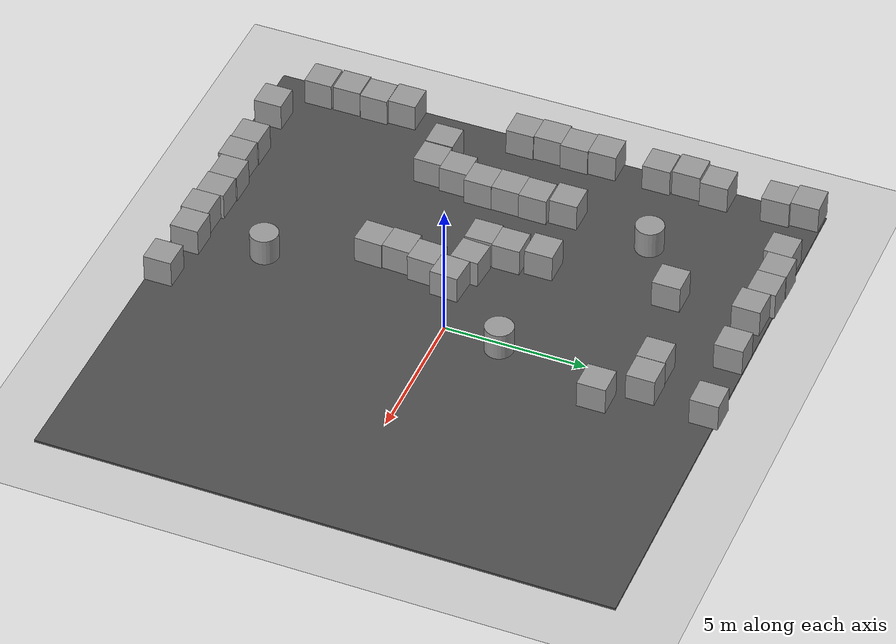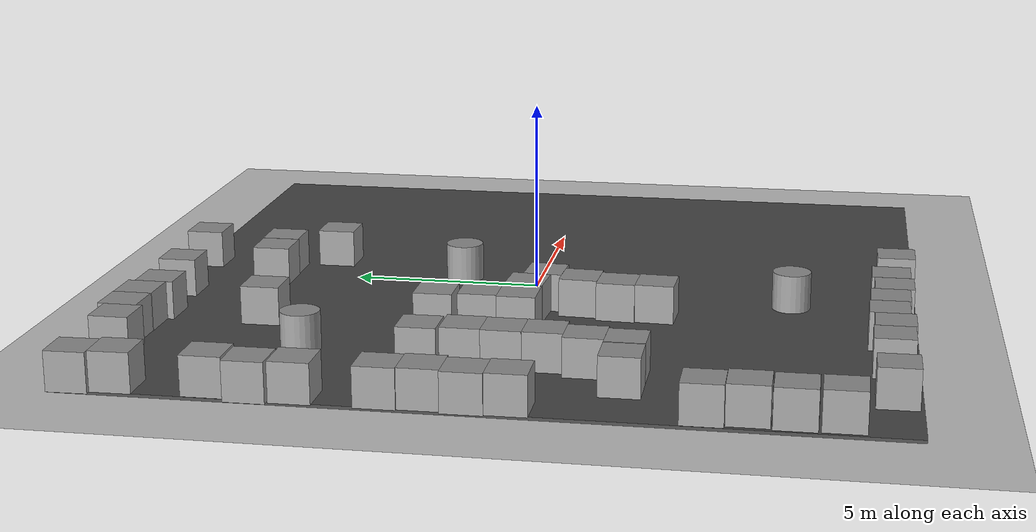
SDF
<sdf version="1.6">
 <world name="default">
  <model name="ground_plane">
   <static>1</static>
   <link name="link">
    <collision name="collision">
     <geometry><plane><normal>0 0 1</normal><size>100 100</size></plane></geometry>
     <surface><friction><ode><mu>100</mu><mu2>50</mu2></ode></friction></surface>
    </collision>
    <visual name="visual">
     <cast_shadows>0</cast_shadows>
     <geometry><plane><normal>0 0 1</normal><size>100 100</size></plane></geometry>
     <material>
      <script><uri>file://media/materials/scripts/gazebo.material</uri><name>Gazebo/Grey</name></script>
     </material>
    </visual>
   </link>
  </model>
  <model name="asphalt_plane">
   <static>1</static>
   <link name="link">
    <collision name="collision"><geometry><box><size>20 20 0.1</size></box></geometry></collision>
    <visual name="visual">
     <cast_shadows>0</cast_shadows>
     <geometry><box><size>20 20 0.1</size></box></geometry>
     <material>
      <script>
       <uri>model://asphalt_plane/materials/scripts</uri>
       <uri>model://asphalt_plane/materials/textures</uri>
       <name>vrc/asphalt</name>
      </script>
     </material>
    </visual>
   </link>
   <pose>0.023839 -0.146036 0 0 -0 0</pose>
  </model>
  <model name="unit_box_0">
   <pose>-9.39334 -8.37793 0.549996 9e-06 0 2.1e-05</pose>
   <link name="link">
    <inertial>
     <mass>1</mass>
     <inertia>
      <ixx>0.166667</ixx>
      <ixy>0</ixy>
      <ixz>0</ixz>
      <iyy>0.166667</iyy>
      <iyz>0</iyz>
      <izz>0.166667</izz>
     </inertia>
    </inertial>
    <collision name="collision"><geometry><box><size>1 1 1</size></box></geometry></collision>
    <visual name="visual">
     <geometry><box><size>1 1 1</size></box></geometry>
     <material>
      <script><name>Gazebo/Grey</name><uri>file://media/materials/scripts/gazebo.material</uri></script>
     </material>
    </visual>
   </link>
  </model>
  <model name="unit_box_1">
   <pose>-9.41764 -7.31554 0.549996 9e-06 0 2.1e-05</pose>
   <link name="link">
    <inertial>
     <mass>1</mass>
     <inertia>
      <ixx>0.166667</ixx>
      <ixy>0</ixy>
      <ixz>0</ixz>
      <iyy>0.166667</iyy>
      <iyz>0</iyz>
      <izz>0.166667</izz>
     </inertia>
    </inertial>
    <collision name="collision"><geometry><box><size>1 1 1</size></box></geometry></collision>
    <visual name="visual">
     <geometry><box><size>1 1 1</size></box></geometry>
     <material>
      <script><name>Gazebo/Grey</name><uri>file://media/materials/scripts/gazebo.material</uri></script>
     </material>
    </visual>
   </link>
  </model>
  <model name="unit_box_1_clone">
   <pose>-9.36199 -6.27955 0.549996 9e-06 -0 7.6e-05</pose>
   <link name="link">
    <inertial>
     <mass>1</mass>
     <inertia>
      <ixx>0.166667</ixx>
      <ixy>0</ixy>
      <ixz>0</ixz>
      <iyy>0.166667</iyy>
      <iyz>0</iyz>
      <izz>0.166667</izz>
     </inertia>
    </inertial>
    <collision name="collision"><geometry><box><size>1 1 1</size></box></geometry></collision>
    <visual name="visual">
     <geometry><box><size>1 1 1</size></box></geometry>
     <material>
      <script><name>Gazebo/Grey</name><uri>file://media/materials/scripts/gazebo.material</uri></script>
     </material>
    </visual>
   </link>
  </model>
  <model name="unit_box_1_clone_0">
   <pose>-9.46654 -5.27001 0.549996 9e-06 0 7.5e-05</pose>
   <link name="link">
    <inertial>
     <mass>1</mass>
     <inertia>
      <ixx>0.166667</ixx>
      <ixy>0</ixy>
      <ixz>0</ixz>
      <iyy>0.166667</iyy>
      <iyz>0</iyz>
      <izz>0.166667</izz>
     </inertia>
    </inertial>
    <collision name="collision"><geometry><box><size>1 1 1</size></box></geometry></collision>
    <visual name="visual">
     <geometry><box><size>1 1 1</size></box></geometry>
     <material>
      <script><name>Gazebo/Grey</name><uri>file://media/materials/scripts/gazebo.material</uri></script>
     </material>
    </visual>
   </link>
  </model>
  <model name="unit_box_1_clone_1">
   <pose>-7.99794 -3.28029 0.549996 9e-06 -0 7.4e-05</pose>
   <link name="link">
    <inertial>
     <mass>1</mass>
     <inertia>
      <ixx>0.166667</ixx>
      <ixy>0</ixy>
      <ixz>0</ixz>
      <iyy>0.166667</iyy>
      <iyz>0</iyz>
      <izz>0.166667</izz>
     </inertia>
    </inertial>
    <collision name="collision"><geometry><box><size>1 1 1</size></box></geometry></collision>
    <visual name="visual">
     <geometry><box><size>1 1 1</size></box></geometry>
     <material>
      <script><name>Gazebo/Grey</name><uri>file://media/materials/scripts/gazebo.material</uri></script>
     </material>
    </visual>
   </link>
  </model>
  <model name="unit_box_1_clone_2">
   <pose>-6.96348 -3.28332 0.549996 9e-06 0 -0.008605</pose>
   <link name="link">
    <inertial>
     <mass>1</mass>
     <inertia>
      <ixx>0.166667</ixx>
      <ixy>0</ixy>
      <ixz>0</ixz>
      <iyy>0.166667</iyy>
      <iyz>0</iyz>
      <izz>0.166667</izz>
     </inertia>
    </inertial>
    <collision name="collision"><geometry><box><size>1 1 1</size></box></geometry></collision>
    <visual name="visual">
     <geometry><box><size>1 1 1</size></box></geometry>
     <material>
      <script><name>Gazebo/Grey</name><uri>file://media/materials/scripts/gazebo.material</uri></script>
     </material>
    </visual>
   </link>
  </model>
  <model name="unit_box_1_clone_3">
   <pose>-6.82914 -2.28436 0.549996 9e-06 0 -0.008661</pose>
   <link name="link">
    <inertial>
     <mass>1</mass>
     <inertia>
      <ixx>0.166667</ixx>
      <ixy>0</ixy>
      <ixz>0</ixz>
      <iyy>0.166667</iyy>
      <iyz>0</iyz>
      <izz>0.166667</izz>
     </inertia>
    </inertial>
    <collision name="collision"><geometry><box><size>1 1 1</size></box></geometry></collision>
    <visual name="visual">
     <geometry><box><size>1 1 1</size></box></geometry>
     <material>
      <script><name>Gazebo/Grey</name><uri>file://media/materials/scripts/gazebo.material</uri></script>
     </material>
    </visual>
   </link>
  </model>
  <model name="unit_box_1_clone_4">
   <pose>-6.57612 -1.28593 0.549996 9e-06 0 -0.007904</pose>
   <link name="link">
    <inertial>
     <mass>1</mass>
     <inertia>
      <ixx>0.166667</ixx>
      <ixy>0</ixy>
      <ixz>0</ixz>
      <iyy>0.166667</iyy>
      <iyz>0</iyz>
      <izz>0.166667</izz>
     </inertia>
    </inertial>
    <collision name="collision"><geometry><box><size>1 1 1</size></box></geometry></collision>
    <visual name="visual">
     <geometry><box><size>1 1 1</size></box></geometry>
     <material>
      <script><name>Gazebo/Grey</name><uri>file://media/materials/scripts/gazebo.material</uri></script>
     </material>
    </visual>
   </link>
  </model>
  <model name="unit_box_1_clone_5">
   <pose>-6.58122 -0.285844 0.549996 9e-06 0 -0.007904</pose>
   <link name="link">
    <inertial>
     <mass>1</mass>
     <inertia>
      <ixx>0.166667</ixx>
      <ixy>0</ixy>
      <ixz>0</ixz>
      <iyy>0.166667</iyy>
      <iyz>0</iyz>
      <izz>0.166667</izz>
     </inertia>
    </inertial>
    <collision name="collision"><geometry><box><size>1 1 1</size></box></geometry></collision>
    <visual name="visual">
     <geometry><box><size>1 1 1</size></box></geometry>
     <material>
      <script><name>Gazebo/Grey</name><uri>file://media/materials/scripts/gazebo.material</uri></script>
     </material>
    </visual>
   </link>
  </model>
  <model name="unit_box_1_clone_6">
   <pose>-6.55061 0.714163 0.549996 9e-06 -0 -0.008004</pose>
   <link name="link">
    <inertial>
     <mass>1</mass>
     <inertia>
      <ixx>0.166667</ixx>
      <ixy>0</ixy>
      <ixz>0</ixz>
      <iyy>0.166667</iyy>
      <iyz>0</iyz>
      <izz>0.166667</izz>
     </inertia>
    </inertial>
    <collision name="collision"><geometry><box><size>1 1 1</size></box></geometry></collision>
    <visual name="visual">
     <geometry><box><size>1 1 1</size></box></geometry>
     <material>
      <script><name>Gazebo/Grey</name><uri>file://media/materials/scripts/gazebo.material</uri></script>
     </material>
    </visual>
   </link>
  </model>
  <model name="unit_box_2">
   <pose>-6.68236 1.7653 0.549995 -1e-05 -0 2.1e-05</pose>
   <link name="link">
    <inertial>
     <mass>1</mass>
     <inertia>
      <ixx>0.166667</ixx>
      <ixy>0</ixy>
      <ixz>0</ixz>
      <iyy>0.166667</iyy>
      <iyz>0</iyz>
      <izz>0.166667</izz>
     </inertia>
    </inertial>
    <collision name="collision"><geometry><box><size>1 1 1</size></box></geometry></collision>
    <visual name="visual">
     <geometry><box><size>1 1 1</size></box></geometry>
     <material>
      <script><name>Gazebo/Grey</name><uri>file://media/materials/scripts/gazebo.material</uri></script>
     </material>
    </visual>
   </link>
  </model>
  <model name="unit_box_1_clone_7">
   <pose>-0.705026 -9.49284 0.549998 -1e-06 4e-06 -0.003058</pose>
   <link name="link">
    <inertial>
     <mass>1</mass>
     <inertia>
      <ixx>0.166667</ixx>
      <ixy>0</ixy>
      <ixz>0</ixz>
      <iyy>0.166667</iyy>
      <iyz>0</iyz>
      <izz>0.166667</izz>
     </inertia>
    </inertial>
    <collision name="collision"><geometry><box><size>1 1 1</size></box></geometry></collision>
    <visual name="visual">
     <geometry><box><size>1 1 1</size></box></geometry>
     <material>
      <script><name>Gazebo/Grey</name><uri>file://media/materials/scripts/gazebo.material</uri></script>
     </material>
    </visual>
   </link>
  </model>
  <model name="unit_box_1_clone_8">
   <pose>-1.70732 -9.56118 0.549998 -1e-06 4e-06 0.000224</pose>
   <link name="link">
    <inertial>
     <mass>1</mass>
     <inertia>
      <ixx>0.166667</ixx>
      <ixy>0</ixy>
      <ixz>0</ixz>
      <iyy>0.166667</iyy>
      <iyz>0</iyz>
      <izz>0.166667</izz>
     </inertia>
    </inertial>
    <collision name="collision"><geometry><box><size>1 1 1</size></box></geometry></collision>
    <visual name="visual">
     <geometry><box><size>1 1 1</size></box></geometry>
     <material>
      <script><name>Gazebo/Grey</name><uri>file://media/materials/scripts/gazebo.material</uri></script>
     </material>
    </visual>
   </link>
  </model>
  <model name="unit_box_1_clone_9">
   <pose>-2.70758 -9.44657 0.549995 -1e-05 -0 0.000276</pose>
   <link name="link">
    <inertial>
     <mass>1</mass>
     <inertia>
      <ixx>0.166667</ixx>
      <ixy>0</ixy>
      <ixz>0</ixz>
      <iyy>0.166667</iyy>
      <iyz>0</iyz>
      <izz>0.166667</izz>
     </inertia>
    </inertial>
    <collision name="collision"><geometry><box><size>1 1 1</size></box></geometry></collision>
    <visual name="visual">
     <geometry><box><size>1 1 1</size></box></geometry>
     <material>
      <script><name>Gazebo/Grey</name><uri>file://media/materials/scripts/gazebo.material</uri></script>
     </material>
    </visual>
   </link>
  </model>
  <model name="unit_box_1_clone_10">
   <pose>-3.70789 -9.40962 0.549996 9e-06 -0 0.000216</pose>
   <link name="link">
    <inertial>
     <mass>1</mass>
     <inertia>
      <ixx>0.166667</ixx>
      <ixy>0</ixy>
      <ixz>0</ixz>
      <iyy>0.166667</iyy>
      <iyz>0</iyz>
      <izz>0.166667</izz>
     </inertia>
    </inertial>
    <collision name="collision"><geometry><box><size>1 1 1</size></box></geometry></collision>
    <visual name="visual">
     <geometry><box><size>1 1 1</size></box></geometry>
     <material>
      <script><name>Gazebo/Grey</name><uri>file://media/materials/scripts/gazebo.material</uri></script>
     </material>
    </visual>
   </link>
  </model>
  <model name="unit_box_1_clone_11">
   <pose>-4.7079 -9.53282 0.549996 9e-06 -0 0.000276</pose>
   <link name="link">
    <inertial>
     <mass>1</mass>
     <inertia>
      <ixx>0.166667</ixx>
      <ixy>0</ixy>
      <ixz>0</ixz>
      <iyy>0.166667</iyy>
      <iyz>0</iyz>
      <izz>0.166667</izz>
     </inertia>
    </inertial>
    <collision name="collision"><geometry><box><size>1 1 1</size></box></geometry></collision>
    <visual name="visual">
     <geometry><box><size>1 1 1</size></box></geometry>
     <material>
      <script><name>Gazebo/Grey</name><uri>file://media/materials/scripts/gazebo.material</uri></script>
     </material>
    </visual>
   </link>
  </model>
  <model name="unit_box_1_clone_12">
   <pose>-5.70792 -9.49714 0.549996 9e-06 -0 0.000294</pose>
   <link name="link">
    <inertial>
     <mass>1</mass>
     <inertia>
      <ixx>0.166667</ixx>
      <ixy>0</ixy>
      <ixz>0</ixz>
      <iyy>0.166667</iyy>
      <iyz>0</iyz>
      <izz>0.166667</izz>
     </inertia>
    </inertial>
    <collision name="collision"><geometry><box><size>1 1 1</size></box></geometry></collision>
    <visual name="visual">
     <geometry><box><size>1 1 1</size></box></geometry>
     <material>
      <script><name>Gazebo/Grey</name><uri>file://media/materials/scripts/gazebo.material</uri></script>
     </material>
    </visual>
   </link>
  </model>
  <model name="unit_box_1_clone_13">
   <pose>-7.74684 -9.54883 0.549996 9e-06 -0 6.6e-05</pose>
   <link name="link">
    <inertial>
     <mass>1</mass>
     <inertia>
      <ixx>0.166667</ixx>
      <ixy>0</ixy>
      <ixz>0</ixz>
      <iyy>0.166667</iyy>
      <iyz>0</iyz>
      <izz>0.166667</izz>
     </inertia>
    </inertial>
    <collision name="collision"><geometry><box><size>1 1 1</size></box></geometry></collision>
    <visual name="visual">
     <geometry><box><size>1 1 1</size></box></geometry>
     <material>
      <script><name>Gazebo/Grey</name><uri>file://media/materials/scripts/gazebo.material</uri></script>
     </material>
    </visual>
   </link>
  </model>
  <model name="unit_box_1_clone_14">
   <pose>1.09207 -9.6549 0.55 0 -0 0.001285</pose>
   <link name="link">
    <inertial>
     <mass>1</mass>
     <inertia>
      <ixx>0.166667</ixx>
      <ixy>0</ixy>
      <ixz>0</ixz>
      <iyy>0.166667</iyy>
      <iyz>0</iyz>
      <izz>0.166667</izz>
     </inertia>
    </inertial>
    <collision name="collision"><geometry><box><size>1 1 1</size></box></geometry></collision>
    <visual name="visual">
     <geometry><box><size>1 1 1</size></box></geometry>
     <material>
      <script><name>Gazebo/Grey</name><uri>file://media/materials/scripts/gazebo.material</uri></script>
     </material>
    </visual>
   </link>
  </model>
  <model name="unit_box_1_clone_39">
   <pose>0.745098 9.52547 0.549998 -3e-06 -6e-06 -0.000691</pose>
   <link name="link">
    <inertial>
     <mass>1</mass>
     <inertia>
      <ixx>0.166667</ixx>
      <ixy>0</ixy>
      <ixz>0</ixz>
      <iyy>0.166667</iyy>
      <iyz>0</iyz>
      <izz>0.166667</izz>
     </inertia>
    </inertial>
    <collision name="collision"><geometry><box><size>1 1 1</size></box></geometry></collision>
    <visual name="visual">
     <geometry><box><size>1 1 1</size></box></geometry>
     <material>
      <script><name>Gazebo/Grey</name><uri>file://media/materials/scripts/gazebo.material</uri></script>
     </material>
    </visual>
   </link>
  </model>
  <model name="unit_box_1_clone_40">
   <pose>-2.0363 9.35144 0.549996 9e-06 -0 6.2e-05</pose>
   <link name="link">
    <inertial>
     <mass>1</mass>
     <inertia>
      <ixx>0.166667</ixx>
      <ixy>0</ixy>
      <ixz>0</ixz>
      <iyy>0.166667</iyy>
      <iyz>0</iyz>
      <izz>0.166667</izz>
     </inertia>
    </inertial>
    <collision name="collision"><geometry><box><size>1 1 1</size></box></geometry></collision>
    <visual name="visual">
     <geometry><box><size>1 1 1</size></box></geometry>
     <material>
      <script><name>Gazebo/Grey</name><uri>file://media/materials/scripts/gazebo.material</uri></script>
     </material>
    </visual>
   </link>
  </model>
  <model name="unit_box_1_clone_41">
   <pose>-4.02686 9.2434 0.549995 -0 1e-05 -0.009787</pose>
   <link name="link">
    <inertial>
     <mass>1</mass>
     <inertia>
      <ixx>0.166667</ixx>
      <ixy>0</ixy>
      <ixz>0</ixz>
      <iyy>0.166667</iyy>
      <iyz>0</iyz>
      <izz>0.166667</izz>
     </inertia>
    </inertial>
    <collision name="collision"><geometry><box><size>1 1 1</size></box></geometry></collision>
    <visual name="visual">
     <geometry><box><size>1 1 1</size></box></geometry>
     <material>
      <script><name>Gazebo/Grey</name><uri>file://media/materials/scripts/gazebo.material</uri></script>
     </material>
    </visual>
   </link>
  </model>
  <model name="unit_box_1_clone_42">
   <pose>-5.02535 9.42291 0.55 0 0 -0.00982</pose>
   <link name="link">
    <inertial>
     <mass>1</mass>
     <inertia>
      <ixx>0.166667</ixx>
      <ixy>0</ixy>
      <ixz>0</ixz>
      <iyy>0.166667</iyy>
      <iyz>0</iyz>
      <izz>0.166667</izz>
     </inertia>
    </inertial>
    <collision name="collision"><geometry><box><size>1 1 1</size></box></geometry></collision>
    <visual name="visual">
     <geometry><box><size>1 1 1</size></box></geometry>
     <material>
      <script><name>Gazebo/Grey</name><uri>file://media/materials/scripts/gazebo.material</uri></script>
     </material>
    </visual>
   </link>
  </model>
  <model name="unit_box_1_clone_43">
   <pose>-6.02527 9.44736 0.549996 -8e-06 -0 -0.009945</pose>
   <link name="link">
    <inertial>
     <mass>1</mass>
     <inertia>
      <ixx>0.166667</ixx>
      <ixy>0</ixy>
      <ixz>0</ixz>
      <iyy>0.166667</iyy>
      <iyz>0</iyz>
      <izz>0.166667</izz>
     </inertia>
    </inertial>
    <collision name="collision"><geometry><box><size>1 1 1</size></box></geometry></collision>
    <visual name="visual">
     <geometry><box><size>1 1 1</size></box></geometry>
     <material>
      <script><name>Gazebo/Grey</name><uri>file://media/materials/scripts/gazebo.material</uri></script>
     </material>
    </visual>
   </link>
  </model>
  <model name="unit_box_1_clone_44">
   <pose>-7.02697 9.29033 0.549998 -4e-06 -1e-06 -0.010038</pose>
   <link name="link">
    <inertial>
     <mass>1</mass>
     <inertia>
      <ixx>0.166667</ixx>
      <ixy>0</ixy>
      <ixz>0</ixz>
      <iyy>0.166667</iyy>
      <iyz>0</iyz>
      <izz>0.166667</izz>
     </inertia>
    </inertial>
    <collision name="collision"><geometry><box><size>1 1 1</size></box></geometry></collision>
    <visual name="visual">
     <geometry><box><size>1 1 1</size></box></geometry>
     <material>
      <script><name>Gazebo/Grey</name><uri>file://media/materials/scripts/gazebo.material</uri></script>
     </material>
    </visual>
   </link>
  </model>
  <model name="unit_box_1_clone_45">
   <pose>-9.65357 9.30938 0.55 0 -0 0.016627</pose>
   <link name="link">
    <inertial>
     <mass>1</mass>
     <inertia>
      <ixx>0.166667</ixx>
      <ixy>0</ixy>
      <ixz>0</ixz>
      <iyy>0.166667</iyy>
      <iyz>0</iyz>
      <izz>0.166667</izz>
     </inertia>
    </inertial>
    <collision name="collision"><geometry><box><size>1 1 1</size></box></geometry></collision>
    <visual name="visual">
     <geometry><box><size>1 1 1</size></box></geometry>
     <material>
      <script><name>Gazebo/Grey</name><uri>file://media/materials/scripts/gazebo.material</uri></script>
     </material>
    </visual>
   </link>
  </model>
  <model name="unit_box_1_clone_46">
   <pose>-9.50816 8.31159 0.55 0 -0 0.016775</pose>
   <link name="link">
    <inertial>
     <mass>1</mass>
     <inertia>
      <ixx>0.166667</ixx>
      <ixy>0</ixy>
      <ixz>0</ixz>
      <iyy>0.166667</iyy>
      <iyz>0</iyz>
      <izz>0.166667</izz>
     </inertia>
    </inertial>
    <collision name="collision"><geometry><box><size>1 1 1</size></box></geometry></collision>
    <visual name="visual">
     <geometry><box><size>1 1 1</size></box></geometry>
     <material>
      <script><name>Gazebo/Grey</name><uri>file://media/materials/scripts/gazebo.material</uri></script>
     </material>
    </visual>
   </link>
  </model>
  <model name="unit_box_1_clone_47">
   <pose>-9.46721 6.13597 0.55 0 -0 3.8e-05</pose>
   <link name="link">
    <inertial>
     <mass>1</mass>
     <inertia>
      <ixx>0.166667</ixx>
      <ixy>0</ixy>
      <ixz>0</ixz>
      <iyy>0.166667</iyy>
      <iyz>0</iyz>
      <izz>0.166667</izz>
     </inertia>
    </inertial>
    <collision name="collision"><geometry><box><size>1 1 1</size></box></geometry></collision>
    <visual name="visual">
     <geometry><box><size>1 1 1</size></box></geometry>
     <material>
      <script><name>Gazebo/Grey</name><uri>file://media/materials/scripts/gazebo.material</uri></script>
     </material>
    </visual>
   </link>
  </model>
  <model name="unit_box_1_clone_48">
   <pose>-9.65559 5.07226 0.550001 -0 -2e-06 3.3e-05</pose>
   <link name="link">
    <inertial>
     <mass>1</mass>
     <inertia>
      <ixx>0.166667</ixx>
      <ixy>0</ixy>
      <ixz>0</ixz>
      <iyy>0.166667</iyy>
      <iyz>0</iyz>
      <izz>0.166667</izz>
     </inertia>
    </inertial>
    <collision name="collision"><geometry><box><size>1 1 1</size></box></geometry></collision>
    <visual name="visual">
     <geometry><box><size>1 1 1</size></box></geometry>
     <material>
      <script><name>Gazebo/Grey</name><uri>file://media/materials/scripts/gazebo.material</uri></script>
     </material>
    </visual>
   </link>
  </model>
  <model name="unit_box_1_clone_49">
   <pose>-9.55136 4.03454 0.55 0 -0 7.4e-05</pose>
   <link name="link">
    <inertial>
     <mass>1</mass>
     <inertia>
      <ixx>0.166667</ixx>
      <ixy>0</ixy>
      <ixz>0</ixz>
      <iyy>0.166667</iyy>
      <iyz>0</iyz>
      <izz>0.166667</izz>
     </inertia>
    </inertial>
    <collision name="collision"><geometry><box><size>1 1 1</size></box></geometry></collision>
    <visual name="visual">
     <geometry><box><size>1 1 1</size></box></geometry>
     <material>
      <script><name>Gazebo/Grey</name><uri>file://media/materials/scripts/gazebo.material</uri></script>
     </material>
    </visual>
   </link>
  </model>
  <model name="unit_box_1_clone_50">
   <pose>-9.55709 2.06439 0.55 -3e-06 -3e-06 0.00222</pose>
   <link name="link">
    <inertial>
     <mass>1</mass>
     <inertia>
      <ixx>0.166667</ixx>
      <ixy>0</ixy>
      <ixz>0</ixz>
      <iyy>0.166667</iyy>
      <iyz>0</iyz>
      <izz>0.166667</izz>
     </inertia>
    </inertial>
    <collision name="collision"><geometry><box><size>1 1 1</size></box></geometry></collision>
    <visual name="visual">
     <geometry><box><size>1 1 1</size></box></geometry>
     <material>
      <script><name>Gazebo/Grey</name><uri>file://media/materials/scripts/gazebo.material</uri></script>
     </material>
    </visual>
   </link>
  </model>
  <model name="unit_box_1_clone_51">
   <pose>-9.50404 1.06442 0.549995 -0 1e-05 0.002374</pose>
   <link name="link">
    <inertial>
     <mass>1</mass>
     <inertia>
      <ixx>0.166667</ixx>
      <ixy>0</ixy>
      <ixz>0</ixz>
      <iyy>0.166667</iyy>
      <iyz>0</iyz>
      <izz>0.166667</izz>
     </inertia>
    </inertial>
    <collision name="collision"><geometry><box><size>1 1 1</size></box></geometry></collision>
    <visual name="visual">
     <geometry><box><size>1 1 1</size></box></geometry>
     <material>
      <script><name>Gazebo/Grey</name><uri>file://media/materials/scripts/gazebo.material</uri></script>
     </material>
    </visual>
   </link>
  </model>
  <model name="unit_box_1_clone_52">
   <pose>-9.58873 0.06415 0.549998 4e-06 1e-06 0.002487</pose>
   <link name="link">
    <inertial>
     <mass>1</mass>
     <inertia>
      <ixx>0.166667</ixx>
      <ixy>0</ixy>
      <ixz>0</ixz>
      <iyy>0.166667</iyy>
      <iyz>0</iyz>
      <izz>0.166667</izz>
     </inertia>
    </inertial>
    <collision name="collision"><geometry><box><size>1 1 1</size></box></geometry></collision>
    <visual name="visual">
     <geometry><box><size>1 1 1</size></box></geometry>
     <material>
      <script><name>Gazebo/Grey</name><uri>file://media/materials/scripts/gazebo.material</uri></script>
     </material>
    </visual>
   </link>
  </model>
  <model name="unit_box_1_clone_53">
   <pose>-9.53464 -0.935743 0.55 0 -0 0.002478</pose>
   <link name="link">
    <inertial>
     <mass>1</mass>
     <inertia>
      <ixx>0.166667</ixx>
      <ixy>0</ixy>
      <ixz>0</ixz>
      <iyy>0.166667</iyy>
      <iyz>0</iyz>
      <izz>0.166667</izz>
     </inertia>
    </inertial>
    <collision name="collision"><geometry><box><size>1 1 1</size></box></geometry></collision>
    <visual name="visual">
     <geometry><box><size>1 1 1</size></box></geometry>
     <material>
      <script><name>Gazebo/Grey</name><uri>file://media/materials/scripts/gazebo.material</uri></script>
     </material>
    </visual>
   </link>
  </model>
  <model name="unit_box_1_clone_54">
   <pose>-4.11779 6.4088 0.55 0 -0 3.8e-05</pose>
   <link name="link">
    <inertial>
     <mass>1</mass>
     <inertia>
      <ixx>0.166667</ixx>
      <ixy>0</ixy>
      <ixz>0</ixz>
      <iyy>0.166667</iyy>
      <iyz>0</iyz>
      <izz>0.166667</izz>
     </inertia>
    </inertial>
    <collision name="collision"><geometry><box><size>1 1 1</size></box></geometry></collision>
    <visual name="visual">
     <geometry><box><size>1 1 1</size></box></geometry>
     <material>
      <script><name>Gazebo/Grey</name><uri>file://media/materials/scripts/gazebo.material</uri></script>
     </material>
    </visual>
   </link>
  </model>
  <model name="unit_box_3">
   <pose>-2.41862 -3.52642 0.549997 0 -7e-06 -0.04261</pose>
   <link name="link">
    <inertial>
     <mass>1</mass>
     <inertia>
      <ixx>0.166667</ixx>
      <ixy>0</ixy>
      <ixz>0</ixz>
      <iyy>0.166667</iyy>
      <iyz>0</iyz>
      <izz>0.166667</izz>
     </inertia>
    </inertial>
    <collision name="collision"><geometry><box><size>1 1 1</size></box></geometry></collision>
    <visual name="visual">
     <geometry><box><size>1 1 1</size></box></geometry>
     <material>
      <script><name>Gazebo/Grey</name><uri>file://media/materials/scripts/gazebo.material</uri></script>
     </material>
    </visual>
   </link>
  </model>
  <model name="unit_box_1_clone_55">
   <pose>-2.42251 -2.52504 0.55 0 0 -0.042998</pose>
   <link name="link">
    <inertial>
     <mass>1</mass>
     <inertia>
      <ixx>0.166667</ixx>
      <ixy>0</ixy>
      <ixz>0</ixz>
      <iyy>0.166667</iyy>
      <iyz>0</iyz>
      <izz>0.166667</izz>
     </inertia>
    </inertial>
    <collision name="collision"><geometry><box><size>1 1 1</size></box></geometry></collision>
    <visual name="visual">
     <geometry><box><size>1 1 1</size></box></geometry>
     <material>
      <script><name>Gazebo/Grey</name><uri>file://media/materials/scripts/gazebo.material</uri></script>
     </material>
    </visual>
   </link>
  </model>
  <model name="unit_box_1_clone_56">
   <pose>-2.21364 -1.53188 0.55 0 0 -0.046464</pose>
   <link name="link">
    <inertial>
     <mass>1</mass>
     <inertia>
      <ixx>0.166667</ixx>
      <ixy>0</ixy>
      <ixz>0</ixz>
      <iyy>0.166667</iyy>
      <iyz>0</iyz>
      <izz>0.166667</izz>
     </inertia>
    </inertial>
    <collision name="collision"><geometry><box><size>1 1 1</size></box></geometry></collision>
    <visual name="visual">
     <geometry><box><size>1 1 1</size></box></geometry>
     <material>
      <script><name>Gazebo/Grey</name><uri>file://media/materials/scripts/gazebo.material</uri></script>
     </material>
    </visual>
   </link>
  </model>
  <model name="unit_box_1_clone_57">
   <pose>-1.80879 -0.548421 0.549997 0 -7e-06 -0.053732</pose>
   <link name="link">
    <inertial>
     <mass>1</mass>
     <inertia>
      <ixx>0.166667</ixx>
      <ixy>0</ixy>
      <ixz>0</ixz>
      <iyy>0.166667</iyy>
      <iyz>0</iyz>
      <izz>0.166667</izz>
     </inertia>
    </inertial>
    <collision name="collision"><geometry><box><size>1 1 1</size></box></geometry></collision>
    <visual name="visual">
     <geometry><box><size>1 1 1</size></box></geometry>
     <material>
      <script><name>Gazebo/Grey</name><uri>file://media/materials/scripts/gazebo.material</uri></script>
     </material>
    </visual>
   </link>
  </model>
  <model name="unit_box_1_clone_58">
   <pose>-2.79448 -0.212834 0.550002 0 4e-06 -0.063946</pose>
   <link name="link">
    <inertial>
     <mass>1</mass>
     <inertia>
      <ixx>0.166667</ixx>
      <ixy>0</ixy>
      <ixz>0</ixz>
      <iyy>0.166667</iyy>
      <iyz>0</iyz>
      <izz>0.166667</izz>
     </inertia>
    </inertial>
    <collision name="collision"><geometry><box><size>1 1 1</size></box></geometry></collision>
    <visual name="visual">
     <geometry><box><size>1 1 1</size></box></geometry>
     <material>
      <script><name>Gazebo/Grey</name><uri>file://media/materials/scripts/gazebo.material</uri></script>
     </material>
    </visual>
   </link>
  </model>
  <model name="unit_box_1_clone_59">
   <pose>-3.89712 -0.175694 0.55 0 0 -0.003981</pose>
   <link name="link">
    <inertial>
     <mass>1</mass>
     <inertia>
      <ixx>0.166667</ixx>
      <ixy>0</ixy>
      <ixz>0</ixz>
      <iyy>0.166667</iyy>
      <iyz>0</iyz>
      <izz>0.166667</izz>
     </inertia>
    </inertial>
    <collision name="collision"><geometry><box><size>1 1 1</size></box></geometry></collision>
    <visual name="visual">
     <geometry><box><size>1 1 1</size></box></geometry>
     <material>
      <script><name>Gazebo/Grey</name><uri>file://media/materials/scripts/gazebo.material</uri></script>
     </material>
    </visual>
   </link>
  </model>
  <model name="unit_box_1_clone_60">
   <pose>-3.83812 0.824087 0.55 0 0 -0.003978</pose>
   <link name="link">
    <inertial>
     <mass>1</mass>
     <inertia>
      <ixx>0.166667</ixx>
      <ixy>0</ixy>
      <ixz>0</ixz>
      <iyy>0.166667</iyy>
      <iyz>0</iyz>
      <izz>0.166667</izz>
     </inertia>
    </inertial>
    <collision name="collision"><geometry><box><size>1 1 1</size></box></geometry></collision>
    <visual name="visual">
     <geometry><box><size>1 1 1</size></box></geometry>
     <material>
      <script><name>Gazebo/Grey</name><uri>file://media/materials/scripts/gazebo.material</uri></script>
     </material>
    </visual>
   </link>
  </model>
  <model name="unit_box_1_clone_61">
   <pose>-3.96951 1.94293 0.55 0 -0 2.7e-05</pose>
   <link name="link">
    <inertial>
     <mass>1</mass>
     <inertia>
      <ixx>0.166667</ixx>
      <ixy>0</ixy>
      <ixz>0</ixz>
      <iyy>0.166667</iyy>
      <iyz>0</iyz>
      <izz>0.166667</izz>
     </inertia>
    </inertial>
    <collision name="collision"><geometry><box><size>1 1 1</size></box></geometry></collision>
    <visual name="visual">
     <geometry><box><size>1 1 1</size></box></geometry>
     <material>
      <script><name>Gazebo/Grey</name><uri>file://media/materials/scripts/gazebo.material</uri></script>
     </material>
    </visual>
   </link>
  </model>
  <model name="unit_box_1_clone_67">
   <pose>1.38077 5.88318 0.55 0 -0 2.4e-05</pose>
   <link name="link">
    <inertial>
     <mass>1</mass>
     <inertia>
      <ixx>0.166667</ixx>
      <ixy>0</ixy>
      <ixz>0</ixz>
      <iyy>0.166667</iyy>
      <iyz>0</iyz>
      <izz>0.166667</izz>
     </inertia>
    </inertial>
    <collision name="collision"><geometry><box><size>1 1 1</size></box></geometry></collision>
    <visual name="visual">
     <geometry><box><size>1 1 1</size></box></geometry>
     <material>
      <script><name>Gazebo/Grey</name><uri>file://media/materials/scripts/gazebo.material</uri></script>
     </material>
    </visual>
   </link>
  </model>
  <model name="unit_box_1_clone_69">
   <pose>0.428725 7.21543 0.55 0 -0 2.3e-05</pose>
   <link name="link">
    <inertial>
     <mass>1</mass>
     <inertia>
      <ixx>0.166667</ixx>
      <ixy>0</ixy>
      <ixz>0</ixz>
      <iyy>0.166667</iyy>
      <iyz>0</iyz>
      <izz>0.166667</izz>
     </inertia>
    </inertial>
    <collision name="collision"><geometry><box><size>1 1 1</size></box></geometry></collision>
    <visual name="visual">
     <geometry><box><size>1 1 1</size></box></geometry>
     <material>
      <script><name>Gazebo/Grey</name><uri>file://media/materials/scripts/gazebo.material</uri></script>
     </material>
    </visual>
   </link>
  </model>
  <model name="unit_box_1_clone_70">
   <pose>-0.58068 7.19254 0.55 0 -0 2.2e-05</pose>
   <link name="link">
    <inertial>
     <mass>1</mass>
     <inertia>
      <ixx>0.166667</ixx>
      <ixy>0</ixy>
      <ixz>0</ixz>
      <iyy>0.166667</iyy>
      <iyz>0</iyz>
      <izz>0.166667</izz>
     </inertia>
    </inertial>
    <collision name="collision"><geometry><box><size>1 1 1</size></box></geometry></collision>
    <visual name="visual">
     <geometry><box><size>1 1 1</size></box></geometry>
     <material>
      <script><name>Gazebo/Grey</name><uri>file://media/materials/scripts/gazebo.material</uri></script>
     </material>
    </visual>
   </link>
  </model>
  <model name="unit_cylinder_0">
   <pose>-1.04455 -6.93225 0.549992 -5e-06 0 0.000118</pose>
   <link name="link">
    <inertial>
     <mass>1</mass>
     <inertia><ixx>0.145833</ixx><ixy>0</ixy><ixz>0</ixz><iyy>0.145833</iyy><iyz>0</iyz><izz>0.125</izz></inertia>
    </inertial>
    <collision name="collision">
     <geometry><cylinder><radius>0.5</radius><length>1</length></cylinder></geometry>
    </collision>
    <visual name="visual">
     <geometry><cylinder><radius>0.5</radius><length>1</length></cylinder></geometry>
     <material>
      <script><name>Gazebo/Grey</name><uri>file://media/materials/scripts/gazebo.material</uri></script>
     </material>
    </visual>
   </link>
  </model>
  <model name="unit_cylinder_0_clone">
   <pose>-6.27598 4.84793 0.54999 0 0 -1.9e-05</pose>
   <link name="link">
    <inertial>
     <mass>1</mass>
     <inertia><ixx>0.145833</ixx><ixy>0</ixy><ixz>0</ixz><iyy>0.145833</iyy><iyz>0</iyz><izz>0.125</izz></inertia>
    </inertial>
    <collision name="collision">
     <geometry><cylinder><radius>0.5</radius><length>1</length></cylinder></geometry>
    </collision>
    <visual name="visual">
     <geometry><cylinder><radius>0.5</radius><length>1</length></cylinder></geometry>
     <material>
      <script><name>Gazebo/Grey</name><uri>file://media/materials/scripts/gazebo.material</uri></script>
     </material>
    </visual>
   </link>
  </model>
  <model name="unit_cylinder_0_clone_0">
   <pose>0.308015 2.06256 0.549992 2e-06 1e-06 -5e-06</pose>
   <link name="link">
    <inertial>
     <mass>1</mass>
     <inertia><ixx>0.145833</ixx><ixy>0</ixy><ixz>0</ixz><iyy>0.145833</iyy><iyz>0</iyz><izz>0.125</izz></inertia>
    </inertial>
    <collision name="collision">
     <geometry><cylinder><radius>0.5</radius><length>1</length></cylinder></geometry>
    </collision>
    <visual name="visual">
     <geometry><cylinder><radius>0.5</radius><length>1</length></cylinder></geometry>
     <material>
      <script><name>Gazebo/Grey</name><uri>file://media/materials/scripts/gazebo.material</uri></script>
     </material>
    </visual>
   </link>
  </model>
 </world>
</sdf>
